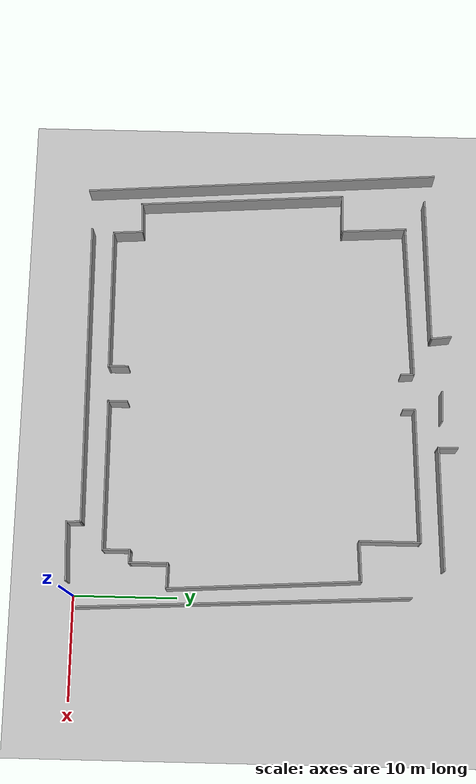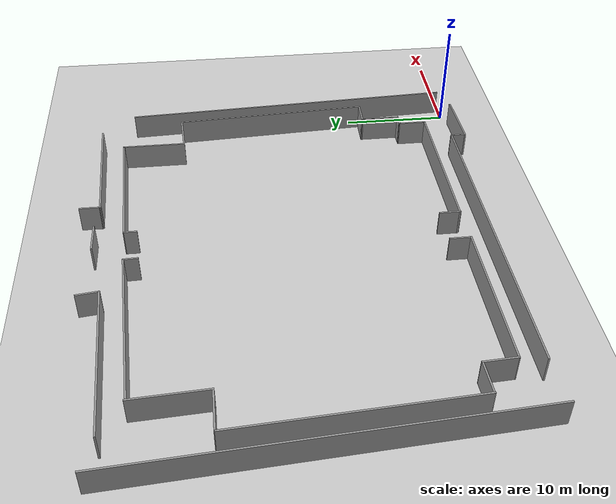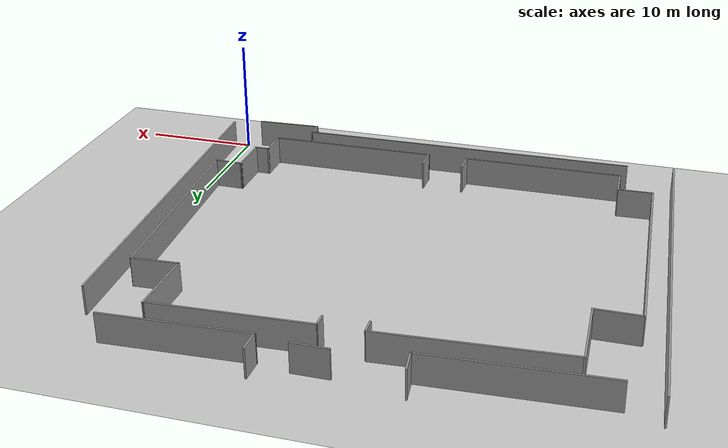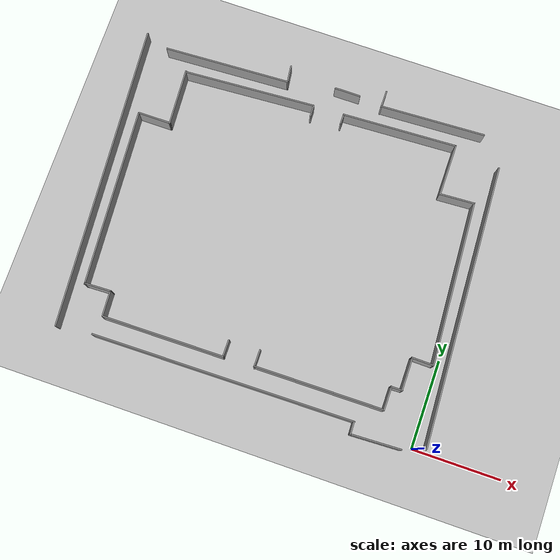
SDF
<?xml version="1.0" ?>

<sdf version="1.6">
    <world name="default">

        <include>
            <uri>model://sun</uri>
        </include>
        <include>
            <uri>model://ground_plane</uri>
        </include>
	<include>
	    <pose>-20.8 18.0 0 0 0 0 </pose>
	    <uri>model://map</uri>
	</include>

    </world>
</sdf>

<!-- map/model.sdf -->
<sdf version='1.6'>
  <model name='it2'>
    <pose>-0.12537 0.783744 0 0 -0 0</pose>
    <link name='Wall_10'>
      <collision name='Wall_10_Collision'>
        <geometry>
          <box>
            <size>1.3291 0.15 2.5</size>
          </box>
        </geometry>
        <pose>0 0 1.25 0 -0 0</pose>
      </collision>
      <visual name='Wall_10_Visual'>
        <pose>0 0 1.25 0 -0 0</pose>
        <geometry>
          <box>
            <size>1.3291 0.15 2.5</size>
          </box>
        </geometry>
        <material>
          <script>
            <uri>file://media/materials/scripts/gazebo.material</uri>
            <name>Gazebo/Grey</name>
          </script>
          <ambient>1 1 1 1</ambient>
        </material>
        <meta>
          <layer>0</layer>
        </meta>
      </visual>
      <pose>-1.3309 13.8658 0 0 -0 -1.53727</pose>
    </link>
    <link name='Wall_12'>
      <collision name='Wall_12_Collision'>
        <geometry>
          <box>
            <size>1.25 0.15 2.5</size>
          </box>
        </geometry>
        <pose>0 0 1.25 0 -0 0</pose>
      </collision>
      <visual name='Wall_12_Visual'>
        <pose>0 0 1.25 0 -0 0</pose>
        <geometry>
          <box>
            <size>1.25 0.15 2.5</size>
          </box>
        </geometry>
        <material>
          <script>
            <uri>file://media/materials/scripts/gazebo.material</uri>
            <name>Gazebo/Grey</name>
          </script>
          <ambient>1 1 1 1</ambient>
        </material>
        <meta>
          <layer>0</layer>
        </meta>
      </visual>
      <pose>2.17477 14.0548 0 0 -0 1.5708</pose>
    </link>
    <link name='Wall_13'>
      <collision name='Wall_13_Collision'>
        <geometry>
          <box>
            <size>13.1283 0.15 2.5</size>
          </box>
        </geometry>
        <pose>0 0 1.25 0 -0 0</pose>
      </collision>
      <visual name='Wall_13_Visual'>
        <pose>0 0 1.25 0 -0 0</pose>
        <geometry>
          <box>
            <size>13.1283 0.15 2.5</size>
          </box>
        </geometry>
        <material>
          <script>
            <uri>file://media/materials/scripts/gazebo.material</uri>
            <name>Gazebo/Grey</name>
          </script>
          <ambient>1 1 1 1</ambient>
        </material>
        <meta>
          <layer>0</layer>
        </meta>
      </visual>
      <pose>8.65732 14.8976 0 0 -0 0.045127</pose>
    </link>
    <link name='Wall_14'>
      <collision name='Wall_14_Collision'>
        <geometry>
          <box>
            <size>6 0.15 2.5</size>
          </box>
        </geometry>
        <pose>0 0 1.25 0 -0 0</pose>
      </collision>
      <visual name='Wall_14_Visual'>
        <pose>0 0 1.25 0 -0 0</pose>
        <geometry>
          <box>
            <size>6 0.15 2.5</size>
          </box>
        </geometry>
        <material>
          <script>
            <uri>file://media/materials/scripts/gazebo.material</uri>
            <name>Gazebo/Grey</name>
          </script>
          <ambient>1 1 1 1</ambient>
        </material>
        <meta>
          <layer>0</layer>
        </meta>
      </visual>
      <pose>15.1399 12.2653 0 0 -0 -1.5708</pose>
    </link>
    <link name='Wall_17'>
      <collision name='Wall_17_Collision'>
        <geometry>
          <box>
            <size>3.9805 0.15 2.5</size>
          </box>
        </geometry>
        <pose>0 0 1.25 0 -0 0</pose>
      </collision>
      <visual name='Wall_17_Visual'>
        <pose>0 0 1.25 0 -0 0</pose>
        <geometry>
          <box>
            <size>3.9805 0.15 2.5</size>
          </box>
        </geometry>
        <material>
          <script>
            <uri>file://media/materials/scripts/gazebo.material</uri>
            <name>Gazebo/Grey</name>
          </script>
          <ambient>1 1 1 1</ambient>
        </material>
        <meta>
          <layer>0</layer>
        </meta>
      </visual>
      <pose>17.0673 9.43839 0 0 -0 0.053857</pose>
    </link>
    <link name='Wall_18'>
      <collision name='Wall_18_Collision'>
        <geometry>
          <box>
            <size>18.6539 0.15 2.5</size>
          </box>
        </geometry>
        <pose>0 0 1.25 0 -0 0</pose>
      </collision>
      <visual name='Wall_18_Visual'>
        <pose>0 0 1.25 0 -0 0</pose>
        <geometry>
          <box>
            <size>18.6539 0.15 2.5</size>
          </box>
        </geometry>
        <material>
          <script>
            <uri>file://media/materials/scripts/gazebo.material</uri>
            <name>Gazebo/Grey</name>
          </script>
          <ambient>1 1 1 1</ambient>
        </material>
        <meta>
          <layer>0</layer>
        </meta>
      </visual>
      <pose>19.5364 0.305194 0 0 -0 -1.51262</pose>
    </link>
    <link name='Wall_19'>
      <collision name='Wall_19_Collision'>
        <geometry>
          <box>
            <size>2.52313 0.15 2.5</size>
          </box>
        </geometry>
        <pose>0 0 1.25 0 -0 0</pose>
      </collision>
      <visual name='Wall_19_Visual'>
        <pose>0 0 1.25 0 -0 0</pose>
        <geometry>
          <box>
            <size>2.52313 0.15 2.5</size>
          </box>
        </geometry>
        <material>
          <script>
            <uri>file://media/materials/scripts/gazebo.material</uri>
            <name>Gazebo/Grey</name>
          </script>
          <ambient>1 1 1 1</ambient>
        </material>
        <meta>
          <layer>0</layer>
        </meta>
      </visual>
      <pose>18.8692 -8.91503 0 0 -0 3.12804</pose>
    </link>
    <link name='Wall_20'>
      <collision name='Wall_20_Collision'>
        <geometry>
          <box>
            <size>3.81095 0.15 2.5</size>
          </box>
        </geometry>
        <pose>0 0 1.25 0 -0 0</pose>
      </collision>
      <visual name='Wall_20_Visual'>
        <pose>0 0 1.25 0 -0 0</pose>
        <geometry>
          <box>
            <size>3.81095 0.15 2.5</size>
          </box>
        </geometry>
        <material>
          <script>
            <uri>file://media/materials/scripts/gazebo.material</uri>
            <name>Gazebo/Grey</name>
          </script>
          <ambient>1 1 1 1</ambient>
        </material>
        <meta>
          <layer>0</layer>
        </meta>
      </visual>
      <pose>17.6869 -10.7291 0 0 -0 -1.56857</pose>
    </link>
    <link name='Wall_21'>
      <collision name='Wall_21_Collision'>
        <geometry>
          <box>
            <size>1.35542 0.15 2.5</size>
          </box>
        </geometry>
        <pose>0 0 1.25 0 -0 0</pose>
      </collision>
      <visual name='Wall_21_Visual'>
        <pose>0 0 1.25 0 -0 0</pose>
        <geometry>
          <box>
            <size>1.35542 0.15 2.5</size>
          </box>
        </geometry>
        <material>
          <script>
            <uri>file://media/materials/scripts/gazebo.material</uri>
            <name>Gazebo/Grey</name>
          </script>
          <ambient>1 1 1 1</ambient>
        </material>
        <meta>
          <layer>0</layer>
        </meta>
      </visual>
      <pose>17.1166 -12.5679 0 0 -0 -3.1273</pose>
    </link>
    <link name='Wall_22'>
      <collision name='Wall_22_Collision'>
        <geometry>
          <box>
            <size>2.75 0.15 2.5</size>
          </box>
        </geometry>
        <pose>0 0 1.25 0 -0 0</pose>
      </collision>
      <visual name='Wall_22_Visual'>
        <pose>0 0 1.25 0 -0 0</pose>
        <geometry>
          <box>
            <size>2.75 0.15 2.5</size>
          </box>
        </geometry>
        <material>
          <script>
            <uri>file://media/materials/scripts/gazebo.material</uri>
            <name>Gazebo/Grey</name>
          </script>
          <ambient>1 1 1 1</ambient>
        </material>
        <meta>
          <layer>0</layer>
        </meta>
      </visual>
      <pose>16.514 -13.8482 0 0 -0 -1.5708</pose>
    </link>
    <link name='Wall_23'>
      <collision name='Wall_23_Collision'>
        <geometry>
          <box>
            <size>14.6866 0.15 2.5</size>
          </box>
        </geometry>
        <pose>0 0 1.25 0 -0 0</pose>
      </collision>
      <visual name='Wall_23_Visual'>
        <pose>0 0 1.25 0 -0 0</pose>
        <geometry>
          <box>
            <size>14.6866 0.15 2.5</size>
          </box>
        </geometry>
        <material>
          <script>
            <uri>file://media/materials/scripts/gazebo.material</uri>
            <name>Gazebo/Grey</name>
          </script>
          <ambient>1 1 1 1</ambient>
        </material>
        <meta>
          <layer>0</layer>
        </meta>
      </visual>
      <pose>9.2459 -15.2029 0 0 -0 -3.13407</pose>
    </link>
    <link name='Wall_24'>
      <collision name='Wall_24_Collision'>
        <geometry>
          <box>
            <size>2 0.15 2.5</size>
          </box>
        </geometry>
        <pose>0 0 1.25 0 -0 0</pose>
      </collision>
      <visual name='Wall_24_Visual'>
        <pose>0 0 1.25 0 -0 0</pose>
        <geometry>
          <box>
            <size>2 0.15 2.5</size>
          </box>
        </geometry>
        <material>
          <script>
            <uri>file://media/materials/scripts/gazebo.material</uri>
            <name>Gazebo/Grey</name>
          </script>
          <ambient>1 1 1 1</ambient>
        </material>
        <meta>
          <layer>0</layer>
        </meta>
      </visual>
      <pose>1.99191 -14.3748 0 0 -0 1.5708</pose>
    </link>
    <link name='Wall_26'>
      <collision name='Wall_26_Collision'>
        <geometry>
          <box>
            <size>2 0.15 2.5</size>
          </box>
        </geometry>
        <pose>0 0 1.25 0 -0 0</pose>
      </collision>
      <visual name='Wall_26_Visual'>
        <pose>0 0 1.25 0 -0 0</pose>
        <geometry>
          <box>
            <size>2 0.15 2.5</size>
          </box>
        </geometry>
        <material>
          <script>
            <uri>file://media/materials/scripts/gazebo.material</uri>
            <name>Gazebo/Grey</name>
          </script>
          <ambient>1 1 1 1</ambient>
        </material>
        <meta>
          <layer>0</layer>
        </meta>
      </visual>
      <pose>-1.53083 -14.4634 0 0 -0 -1.5708</pose>
    </link>
    <link name='Wall_27'>
      <collision name='Wall_27_Collision'>
        <geometry>
          <box>
            <size>13.9408 0.15 2.5</size>
          </box>
        </geometry>
        <pose>0 0 1.25 0 -0 0</pose>
      </collision>
      <visual name='Wall_27_Visual'>
        <pose>0 0 1.25 0 -0 0</pose>
        <geometry>
          <box>
            <size>13.9408 0.15 2.5</size>
          </box>
        </geometry>
        <material>
          <script>
            <uri>file://media/materials/scripts/gazebo.material</uri>
            <name>Gazebo/Grey</name>
          </script>
          <ambient>1 1 1 1</ambient>
        </material>
        <meta>
          <layer>0</layer>
        </meta>
      </visual>
      <pose>-8.39791 -15.4507 0 0 -0 -3.13255</pose>
    </link>
    <link name='Wall_28'>
      <collision name='Wall_28_Collision'>
        <geometry>
          <box>
            <size>2.99852 0.15 2.5</size>
          </box>
        </geometry>
        <pose>0 0 1.25 0 -0 0</pose>
      </collision>
      <visual name='Wall_28_Visual'>
        <pose>0 0 1.25 0 -0 0</pose>
        <geometry>
          <box>
            <size>2.99852 0.15 2.5</size>
          </box>
        </geometry>
        <material>
          <script>
            <uri>file://media/materials/scripts/gazebo.material</uri>
            <name>Gazebo/Grey</name>
          </script>
          <ambient>1 1 1 1</ambient>
        </material>
        <meta>
          <layer>0</layer>
        </meta>
      </visual>
      <pose>-15.3754 -14.0912 0 0 -0 1.6287</pose>
    </link>
    <link name='Wall_29'>
      <collision name='Wall_29_Collision'>
        <geometry>
          <box>
            <size>3.0689 0.15 2.5</size>
          </box>
        </geometry>
        <pose>0 0 1.25 0 -0 0</pose>
      </collision>
      <visual name='Wall_29_Visual'>
        <pose>0 0 1.25 0 -0 0</pose>
        <geometry>
          <box>
            <size>3.0689 0.15 2.5</size>
          </box>
        </geometry>
        <material>
          <script>
            <uri>file://media/materials/scripts/gazebo.material</uri>
            <name>Gazebo/Grey</name>
          </script>
          <ambient>0.729412 0.741176 0.713726 1</ambient>
        </material>
        <meta>
          <layer>0</layer>
        </meta>
      </visual>
      <pose>-16.9164 -12.7216 0 0 -0 -3.10574</pose>
    </link>
    <link name='Wall_30'>
      <collision name='Wall_30_Collision'>
        <geometry>
          <box>
            <size>20.2538 0.15 2.5</size>
          </box>
        </geometry>
        <pose>0 0 1.25 0 -0 0</pose>
      </collision>
      <visual name='Wall_30_Visual'>
        <pose>0 0 1.25 0 -0 0</pose>
        <geometry>
          <box>
            <size>20.2538 0.15 2.5</size>
          </box>
        </geometry>
        <material>
          <script>
            <uri>file://media/materials/scripts/gazebo.material</uri>
            <name>Gazebo/Grey</name>
          </script>
          <ambient>1 1 1 1</ambient>
        </material>
        <meta>
          <layer>0</layer>
        </meta>
      </visual>
      <pose>-19.0113 -2.77019 0 0 -0 1.63415</pose>
    </link>
    <link name='Wall_33'>
      <collision name='Wall_33_Collision'>
        <geometry>
          <box>
            <size>14.382 0.15 2.5</size>
          </box>
        </geometry>
        <pose>0 0 1.25 0 -0 0</pose>
      </collision>
      <visual name='Wall_33_Visual'>
        <pose>0 0 1.25 0 -0 0</pose>
        <geometry>
          <box>
            <size>14.382 0.15 2.5</size>
          </box>
        </geometry>
        <material>
          <script>
            <uri>file://media/materials/scripts/gazebo.material</uri>
            <name>Gazebo/Grey</name>
          </script>
          <ambient>1 1 1 1</ambient>
        </material>
        <meta>
          <layer>0</layer>
        </meta>
      </visual>
      <pose>-12.1451 15.8791 0 0 -0 0.04797</pose>
    </link>
    <link name='Wall_34'>
      <collision name='Wall_34_Collision'>
        <geometry>
          <box>
            <size>2.05438 0.15 2.5</size>
          </box>
        </geometry>
        <pose>0 0 1.25 0 -0 0</pose>
      </collision>
      <visual name='Wall_34_Visual'>
        <pose>0 0 1.25 0 -0 0</pose>
        <geometry>
          <box>
            <size>2.05438 0.15 2.5</size>
          </box>
        </geometry>
        <material>
          <script>
            <uri>file://media/materials/scripts/gazebo.material</uri>
            <name>Gazebo/Grey</name>
          </script>
          <ambient>1 1 1 1</ambient>
        </material>
        <meta>
          <layer>0</layer>
        </meta>
      </visual>
      <pose>-5.15507 17.1652 0 0 -0 1.69476</pose>
    </link>
    <link name='Wall_36'>
      <collision name='Wall_36_Collision'>
        <geometry>
          <box>
            <size>3 0.15 2.5</size>
          </box>
        </geometry>
        <pose>0 0 1.25 0 -0 0</pose>
      </collision>
      <visual name='Wall_36_Visual'>
        <pose>0 0 1.25 0 -0 0</pose>
        <geometry>
          <box>
            <size>3 0.15 2.5</size>
          </box>
        </geometry>
        <material>
          <script>
            <uri>file://media/materials/scripts/gazebo.material</uri>
            <name>Gazebo/Grey</name>
          </script>
          <ambient>1 1 1 1</ambient>
        </material>
        <meta>
          <layer>0</layer>
        </meta>
      </visual>
      <pose>1.75045 17.2617 0 0 -0 0</pose>
    </link>
    <link name='Wall_39'>
      <collision name='Wall_39_Collision'>
        <geometry>
          <box>
            <size>2 0.15 2.5</size>
          </box>
        </geometry>
        <pose>0 0 1.25 0 -0 0</pose>
      </collision>
      <visual name='Wall_39_Visual'>
        <pose>0 0 1.25 0 -0 0</pose>
        <geometry>
          <box>
            <size>2 0.15 2.5</size>
          </box>
        </geometry>
        <material>
          <script>
            <uri>file://media/materials/scripts/gazebo.material</uri>
            <name>Gazebo/Grey</name>
          </script>
          <ambient>1 1 1 1</ambient>
        </material>
        <meta>
          <layer>0</layer>
        </meta>
      </visual>
      <pose>5.87697 17.7966 0 0 -0 -1.5708</pose>
    </link>
    <link name='Wall_40'>
      <collision name='Wall_40_Collision'>
        <geometry>
          <box>
            <size>12.04 0.15 2.5</size>
          </box>
        </geometry>
        <pose>0 0 1.25 0 -0 0</pose>
      </collision>
      <visual name='Wall_40_Visual'>
        <pose>0 0 1.25 0 -0 0</pose>
        <geometry>
          <box>
            <size>12.04 0.15 2.5</size>
          </box>
        </geometry>
        <material>
          <script>
            <uri>file://media/materials/scripts/gazebo.material</uri>
            <name>Gazebo/Grey</name>
          </script>
          <ambient>1 1 1 1</ambient>
        </material>
        <meta>
          <layer>0</layer>
        </meta>
      </visual>
      <pose>11.816 17.1659 0 0 -0 0.044805</pose>
    </link>
    <link name='Wall_44'>
      <collision name='Wall_44_Collision'>
        <geometry>
          <box>
            <size>32.0853 0.15 2.5</size>
          </box>
        </geometry>
        <pose>0 0 1.25 0 -0 0</pose>
      </collision>
      <visual name='Wall_44_Visual'>
        <pose>0 0 1.25 0 -0 0</pose>
        <geometry>
          <box>
            <size>32.0853 0.15 2.5</size>
          </box>
        </geometry>
        <material>
          <script>
            <uri>file://media/materials/scripts/gazebo.material</uri>
            <name>Gazebo/Grey</name>
          </script>
          <ambient>1 1 1 1</ambient>
        </material>
        <meta>
          <layer>0</layer>
        </meta>
      </visual>
      <pose>21.2225 -1.65613 0 0 -0 1.61993</pose>
    </link>
    <link name='Wall_47'>
      <collision name='Wall_47_Collision'>
        <geometry>
          <box>
            <size>5.74187 0.15 2.5</size>
          </box>
        </geometry>
        <pose>0 0 1.25 0 -0 0</pose>
      </collision>
      <visual name='Wall_47_Visual'>
        <pose>0 0 1.25 0 -0 0</pose>
        <geometry>
          <box>
            <size>5.74187 0.15 2.5</size>
          </box>
        </geometry>
        <material>
          <script>
            <uri>file://media/materials/scripts/gazebo.material</uri>
            <name>Gazebo/Grey</name>
          </script>
          <ambient>1 1 1 1</ambient>
        </material>
        <meta>
          <layer>0</layer>
        </meta>
      </visual>
      <pose>16.7161 -18.6088 0 0 -0 -3.10226</pose>
    </link>
    <link name='Wall_48'>
      <collision name='Wall_48_Collision'>
        <geometry>
          <box>
            <size>1.51014 0.15 2.5</size>
          </box>
        </geometry>
        <pose>0 0 1.25 0 -0 0</pose>
      </collision>
      <visual name='Wall_48_Visual'>
        <pose>0 0 1.25 0 -0 0</pose>
        <geometry>
          <box>
            <size>1.51014 0.15 2.5</size>
          </box>
        </geometry>
        <material>
          <script>
            <uri>file://media/materials/scripts/gazebo.material</uri>
            <name>Gazebo/Grey</name>
          </script>
          <ambient>1 1 1 1</ambient>
        </material>
        <meta>
          <layer>0</layer>
        </meta>
      </visual>
      <pose>13.9122 -18.0209 0 0 -0 1.61213</pose>
    </link>
    <link name='Wall_49'>
      <collision name='Wall_49_Collision'>
        <geometry>
          <box>
            <size>29.6914 0.15 2.5</size>
          </box>
        </geometry>
        <pose>0 0 1.25 0 -0 0</pose>
      </collision>
      <visual name='Wall_49_Visual'>
        <pose>0 0 1.25 0 -0 0</pose>
        <geometry>
          <box>
            <size>29.6914 0.15 2.5</size>
          </box>
        </geometry>
        <material>
          <script>
            <uri>file://media/materials/scripts/gazebo.material</uri>
            <name>Gazebo/Grey</name>
          </script>
          <ambient>1 1 1 1</ambient>
        </material>
        <meta>
          <layer>0</layer>
        </meta>
      </visual>
      <pose>-0.848934 -17.5131 0 0 -0 -3.12997</pose>
    </link>
    <link name='Wall_52'>
      <collision name='Wall_52_Collision'>
        <geometry>
          <box>
            <size>34.8262 0.15 2.5</size>
          </box>
        </geometry>
        <pose>0 0 1.25 0 -0 0</pose>
      </collision>
      <visual name='Wall_52_Visual'>
        <pose>0 0 1.25 0 -0 0</pose>
        <geometry>
          <box>
            <size>34.8262 0.15 2.5</size>
          </box>
        </geometry>
        <material>
          <script>
            <uri>file://media/materials/scripts/gazebo.material</uri>
            <name>Gazebo/Grey</name>
          </script>
          <ambient>1 1 1 1</ambient>
        </material>
        <meta>
          <layer>0</layer>
        </meta>
      </visual>
      <pose>-20.8568 -0.818369 0 0 -0 1.6371</pose>
    </link>
    <link name='Wall_7'>
      <collision name='Wall_7_Collision'>
        <geometry>
          <box>
            <size>3.75 0.15 2.5</size>
          </box>
        </geometry>
        <pose>0 0 1.25 0 -0 0</pose>
      </collision>
      <visual name='Wall_7_Visual'>
        <pose>0 0 1.25 0 -0 0</pose>
        <geometry>
          <box>
            <size>3.75 0.15 2.5</size>
          </box>
        </geometry>
        <material>
          <script>
            <uri>file://media/materials/scripts/gazebo.material</uri>
            <name>Gazebo/Grey</name>
          </script>
          <ambient>1 1 1 1</ambient>
        </material>
        <meta>
          <layer>0</layer>
        </meta>
      </visual>
      <pose>-17.7629 7.32134 0 0 -0 0</pose>
    </link>
    <link name='Wall_8'>
      <collision name='Wall_8_Collision'>
        <geometry>
          <box>
            <size>6.50992 0.15 2.5</size>
          </box>
        </geometry>
        <pose>0 0 1.25 0 -0 0</pose>
      </collision>
      <visual name='Wall_8_Visual'>
        <pose>0 0 1.25 0 -0 0</pose>
        <geometry>
          <box>
            <size>6.50992 0.15 2.5</size>
          </box>
        </geometry>
        <material>
          <script>
            <uri>file://media/materials/scripts/gazebo.material</uri>
            <name>Gazebo/Grey</name>
          </script>
          <ambient>1 1 1 1</ambient>
        </material>
        <meta>
          <layer>0</layer>
        </meta>
      </visual>
      <pose>-16.1449 10.4961 0 0 -0 1.62806</pose>
    </link>
    <link name='Wall_9'>
      <collision name='Wall_9_Collision'>
        <geometry>
          <box>
            <size>15.0351 0.15 2.5</size>
          </box>
        </geometry>
        <pose>0 0 1.25 0 -0 0</pose>
      </collision>
      <visual name='Wall_9_Visual'>
        <pose>0 0 1.25 0 -0 0</pose>
        <geometry>
          <box>
            <size>15.0351 0.15 2.5</size>
          </box>
        </geometry>
        <material>
          <script>
            <uri>file://media/materials/scripts/gazebo.material</uri>
            <name>Gazebo/Grey</name>
          </script>
          <ambient>1 1 1 1</ambient>
        </material>
        <meta>
          <layer>0</layer>
        </meta>
      </visual>
      <pose>-8.85859 14.0433 0 0 -0 0.060713</pose>
    </link>
    <static>1</static>
  </model>
</sdf>
